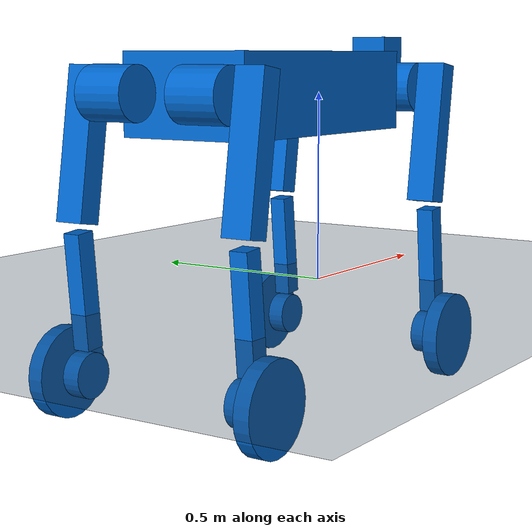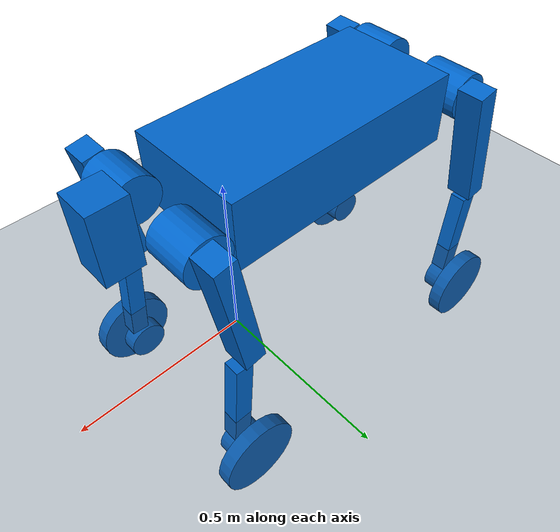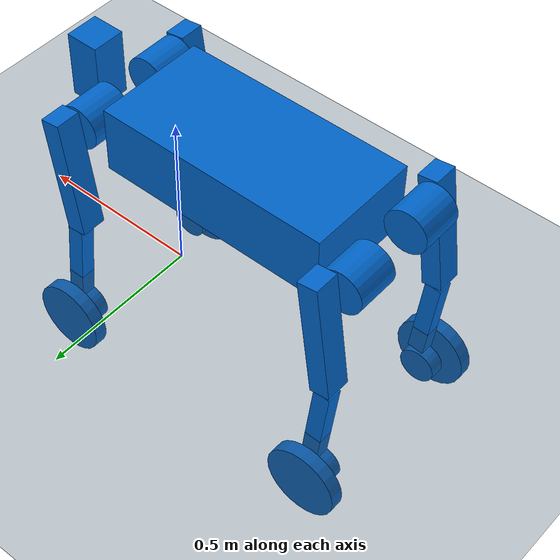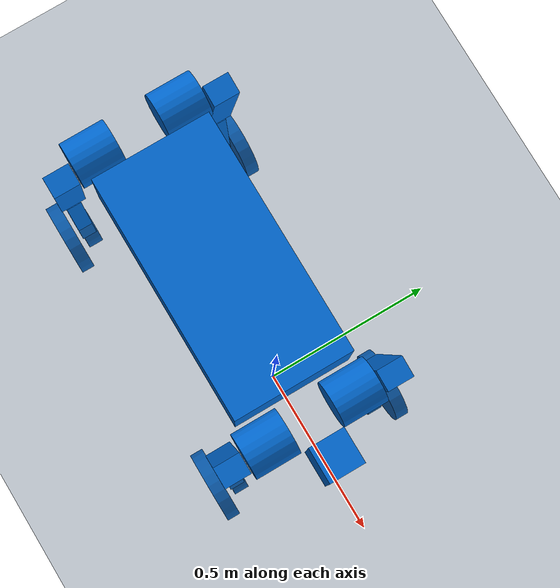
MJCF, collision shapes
<mujoco model="nezha gated-modal sim-to-sim">
  <include file="nezha.xml"/>

  <option timestep="0.005" gravity="0 0 -9.81"/>

  <visual>
    <headlight diffuse="0.6 0.6 0.6" ambient="0.3 0.3 0.3" specular="0 0 0"/>
    <global azimuth="-130" elevation="-20"/>
  </visual>

  <asset>
    <texture type="skybox" builtin="gradient" rgb1="0.3 0.5 0.7" rgb2="0 0 0"
             width="512" height="3072"/>
    <texture type="2d" name="groundplane" builtin="checker" mark="edge"
             rgb1="0.2 0.3 0.4" rgb2="0.1 0.2 0.3" markrgb="0.8 0.8 0.8"
             width="300" height="300"/>
    <material name="groundplane" texture="groundplane" texuniform="true"
              texrepeat="5 5" reflectance="0.2"/>
  </asset>

  <worldbody>
    <light pos="0 0 1.5" dir="0 0 -1" directional="true"/>
    <geom name="floor" type="plane" size="0 0 0.05" material="groundplane"
          contype="2" conaffinity="1" friction="1.0 0.01 0.001"/>
  </worldbody>
</mujoco>

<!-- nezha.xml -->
<mujoco model="nezha">
    <default>
        <default class="robot">
            <default class="motor">
                <joint />
                <motor />
            </default>
            <default class="visual">
                <geom material="default_material" contype="0" conaffinity="0" group="2" />
            </default>
            <default class="collision">
                <!-- Robot collides with terrain (type 2), but not with itself,
                     matching Isaac Gym asset.self_collisions=1. -->
                <geom material="collision_material" condim="3" contype="1" conaffinity="2" solref="0.005 1" friction="0.6 0.01 0.001" density="0" group="3" />
            </default>
        </default>
    </default>
    <compiler angle="radian" meshdir="../../resources/robots/urdf2.1/meshes/" autolimits="true" />
    <size njmax="500" nconmax="100" />
    <asset>
        <material name="default_material" rgba="0.7 0.7 0.7 1" />
        <material name="collision_material" rgba="0.0 0.4 0.8 0.2" />
        <!-- The source trunk.STL has 1.19M faces, above MuJoCo's 200k STL
             limit. This 3 mm visual-only copy preserves its dimensions. -->
        <mesh name="trunk" file="../../../../mujoco/models/assets/trunk_visual.stl" />
        <mesh name="FL_hip" file="FL_hip.STL" />
        <mesh name="FL_thigh" file="FL_thigh.STL" />
        <mesh name="FL_calf" file="FL_calf.STL" />
        <mesh name="FL_footmotor" file="FL_footmotor.STL" />
        <mesh name="FL_foot" file="FL_foot.STL" />
        <mesh name="FR_hip" file="FR_hip.STL" />
        <mesh name="FR_thigh" file="FR_thigh.STL" />
        <mesh name="FR_calf" file="FR_calf.STL" />
        <mesh name="FR_footmotor" file="FR_footmotor.STL" />
        <mesh name="FR_foot" file="FR_foot.STL" />
        <mesh name="RL_hip" file="RL_hip.STL" />
        <mesh name="RL_thigh" file="RL_thigh.STL" />
        <mesh name="RL_calf" file="RL_calf.STL" />
        <mesh name="RL_footmotor" file="RL_footmotor.STL" />
        <mesh name="RL_foot" file="RL_foot.STL" />
        <mesh name="RR_hip" file="RR_hip.STL" />
        <mesh name="RR_thigh" file="RR_thigh.STL" />
        <mesh name="RR_calf" file="RR_calf.STL" />
        <mesh name="RR_footmotor" file="RR_footmotor.STL" />
        <mesh name="RR_foot" file="RR_foot.STL" />
        <mesh name="Lidar" file="Lidar.STL" />
    </asset>
    <worldbody>
        <body name="trunk" childclass="robot" pos="-0.25 0 0.5" quat="1 0 0 0">
            <freejoint name="floating_base" />
            <inertial pos="-0.0007110478286 0.01120736245 -0.004819321797" mass="44.027" fullinertia="0.47177966 1.99866713 2.26564344 0.00168376 9.484e-05 -0.00529047" />
            <site name="imu_site" pos="0 0 0" size="0.005" rgba="1 0 0 1" />
            <site name="base_site" pos="0 0 0" quat="1 0 0 0" />
            <geom type="mesh" mesh="trunk" class="visual" />
            <geom pos="-0.005 -0.01 0.008" type="box" size="0.35 0.17 0.1" class="collision" />
            <body name="FL_hip" pos="0.42614 0.064917 0.013531">
                <inertial pos="-0.006732114424 0.003964663548 -0.0005092345573" mass="2.37707148" fullinertia="0.00493506 0.00665069 0.00555123 0.00013317 -6.604e-05 -2.512e-05" />
                <joint name="FL_hip_joint" axis="1 0 0" range="-0.6 0.6" actuatorfrcrange="-150 150" frictionloss="0.025" />
                <geom type="mesh" mesh="FL_hip" class="visual" />
                <geom pos="0 0.05 0" quat="0.7071068967 0.7071066656 0 0" type="cylinder" size="0.065 0.064" class="collision" />
                <body name="FL_thigh" pos="0 0.1325 0">
                    <inertial pos="-0.003641520897 -0.002809561571 -0.07561639798" mass="4.32911658" fullinertia="0.06040923 0.05814934 0.01093858 -0.00038619 0.00183648 -0.00797877" />
                    <joint name="FL_thigh_joint" axis="0 1 0" range="-0.3 2.6" actuatorfrcrange="-150 150" frictionloss="0.05" />
                    <geom type="mesh" mesh="FL_thigh" class="visual" />
                    <geom pos="-0.01 0.0237 -0.12" euler="0 0.15 0" type="box" size="0.03 0.0375 0.182" class="collision" />
                    <body name="FL_calf" pos="0 0.0245 -0.33">
                        <inertial pos="0.005708204674 0.0005215792343 -0.1404605451" mass="0.65961881" fullinertia="0.01181022 0.01204022 0.00043588 1.9e-06 -0.00035435 -3.335e-05" />
                        <joint name="FL_calf_joint" axis="0 1 0" range="-2.5 -0.7" actuatorfrcrange="-225 225" frictionloss="0.05" />
                        <geom type="mesh" mesh="FL_calf" class="visual" />
                        <geom pos="0 0 -0.13" euler="0 -0.1 0" type="box" size="0.025 0.0225 0.14" class="collision" />
                        <body name="FL_footmotor" pos="5.7407e-05 0.0205 -0.33">
                            <inertial pos="0.0006356721871 -0.002191524088 0.002338656359" mass="1" fullinertia="0.00116858 0.00119167 0.0010827 -2.71e-05 2.589e-05 -0.00010115" />
                            <geom type="mesh" mesh="FL_footmotor" class="visual" />
                            <geom pos="0 -0.025 0" quat="0.7071067812 0.7071067812 0 0" type="cylinder" size="0.055 0.0225" class="collision" />
                            <body name="FL_foot" pos="0.00010365 0.034479 0.00033954">
                                <inertial pos="-6.976440147e-06 -0.007794902633 -1.607328158e-05" mass="0.8" fullinertia="0.00412785 0.00787206 0.00412853 0 -3.6e-07 0" />
                                <joint name="FL_foot_joint" axis="0 1 0" range="-9999 9999" actuatorfrcrange="-56 56" frictionloss="0.05" />
                                <geom type="mesh" mesh="FL_foot" class="visual" />
                                <geom quat="0.7071067812 0.7071067812 0 0" type="cylinder" size="0.11 0.02" class="collision" />
                            </body>
                        </body>
                    </body>
                </body>
            </body>
            <body name="FR_hip" pos="0.42614 -0.089083 0.013531">
                <inertial pos="-0.006732114424 -0.003964663548 0.0005092345573" mass="2.37707148" fullinertia="0.00493506 0.00665069 0.00555123 -0.00013317 6.604e-05 -2.512e-05" />
                <joint name="FR_hip_joint" axis="1 0 0" range="-0.6 0.6" actuatorfrcrange="-150 150" frictionloss="0.025" />
                <geom type="mesh" mesh="FR_hip" class="visual" />
                <geom pos="0 -0.05 0" quat="0.7071068967 0.7071066656 0 0" type="cylinder" size="0.065 0.064" class="collision" />
                <body name="FR_thigh" pos="0 -0.1325 0">
                    <inertial pos="-0.003642335268 0.002789042941 -0.0756084967" mass="4.32961796" fullinertia="0.06035734 0.05814947 0.01099953 0.00038606 0.00191307 0.0079775" />
                    <joint name="FR_thigh_joint" axis="0 1 0" range="-0.3 2.6" actuatorfrcrange="-150 150" frictionloss="0.05" />
                    <geom type="mesh" mesh="FR_thigh" class="visual" />
                    <geom pos="-0.01 -0.0237 -0.12" euler="0 0.15 0" type="box" size="0.03 0.0375 0.182" class="collision" />
                    <body name="FR_calf" pos="0 -0.0245 -0.33">
                        <inertial pos="0.005708374228 -0.0005215676363 -0.1404611372" mass="0.65961882" fullinertia="0.01181021 0.01204022 0.00043588 -1.9e-06 -0.00035435 3.335e-05" />
                        <joint name="FR_calf_joint" axis="0 1 0" range="-2.5 -0.7" actuatorfrcrange="-225 225" frictionloss="0.05" />
                        <geom type="mesh" mesh="FR_calf" class="visual" />
                        <geom pos="0 0 -0.13" euler="0 -0.1 0" type="box" size="0.025 0.0225 0.14" class="collision" />
                        <body name="FR_footmotor" pos="5.7407e-05 -0.0205 -0.33">
                            <inertial pos="0.000618123015 0.002191526012 0.002343364402" mass="1" fullinertia="0.00116955 0.00119167 0.00108173 2.707e-05 2.421e-05 0.00010116" />
                            <geom type="mesh" mesh="FR_footmotor" class="visual" />
                            <geom pos="0 0.025 0" quat="0.7071067812 0.7071067812 0 0" type="cylinder" size="0.055 0.0225" class="collision" />
                            <body name="FR_foot" pos="7.9882e-05 -0.034479 0.0003459">
                                <inertial pos="-2.275997799e-06 0.007794902633 -1.737357004e-05" mass="0.8" fullinertia="0.00412771 0.00787206 0.00412867 0 -1.3e-07 0" />
                                <joint name="FR_foot_joint" axis="0 1 0" range="-9999 9999" actuatorfrcrange="-56 56" frictionloss="0.05" />
                                <geom type="mesh" mesh="FR_foot" class="visual" />
                                <geom quat="0.7071067812 0.7071067812 0 0" type="cylinder" size="0.11 0.02" class="collision" />
                            </body>
                        </body>
                    </body>
                </body>
            </body>
            <body name="RL_hip" pos="-0.43586 0.064917 0.013531">
                <inertial pos="0.006732114424 0.003964663548 0.0005092345573" mass="2.37707148" fullinertia="0.00493506 0.00665069 0.00555123 -0.00013317 -6.604e-05 2.512e-05" />
                <joint name="RL_hip_joint" axis="1 0 0" range="-0.6 0.6" actuatorfrcrange="-150 150" frictionloss="0.025" />
                <geom type="mesh" mesh="RL_hip" class="visual" />
                <geom pos="0 0.05 0" quat="0.7071068967 0.7071066656 0 0" type="cylinder" size="0.065 0.064" class="collision" />
                <body name="RL_thigh" pos="0 0.1325 0">
                    <inertial pos="-0.003641516386 -0.002809561534 -0.07561638233" mass="4.32911658" fullinertia="0.06040923 0.05814934 0.01093858 -0.00038619 0.00183648 -0.00797877" />
                    <joint name="RL_thigh_joint" axis="0 1 0" range="-0.3 2.6" actuatorfrcrange="-150 150" frictionloss="0.05" />
                    <geom type="mesh" mesh="RL_thigh" class="visual" />
                    <geom pos="0.01 0.0237 -0.12" euler="0 0.15 0" type="box" size="0.03 0.0375 0.182" class="collision" />
                    <body name="RL_calf" pos="0 0.0245 -0.33">
                        <inertial pos="0.005708204674 0.0005215792343 -0.1404605451" mass="0.65961881" fullinertia="0.01181022 0.01204022 0.00043588 1.9e-06 -0.00035435 -3.335e-05" />
                        <joint name="RL_calf_joint" axis="0 1 0" range="-2.5 -0.7" actuatorfrcrange="-225 225" frictionloss="0.05" />
                        <geom type="mesh" mesh="RL_calf" class="visual" />
                        <geom pos="0 0 -0.13" euler="0 -0.1 0" type="box" size="0.025 0.0225 0.14" class="collision" />
                        <body name="RL_footmotor" pos="5.7407e-05 0.0205 -0.33">
                            <inertial pos="0.0006356721861 -0.002191524068 0.002338656346" mass="1" fullinertia="0.00116858 0.00119167 0.0010827 -2.71e-05 2.589e-05 -0.00010115" />
                            <geom type="mesh" mesh="RL_footmotor" class="visual" />
                            <geom pos="0 -0.025 0" quat="0.7071067812 0.7071067812 0 0" type="cylinder" size="0.055 0.0225" class="collision" />
                            <body name="RL_foot" pos="0.00010365 0.034479 0.00033954">
                                <inertial pos="-4.68157255e-06 -0.007794902633 1.688502237e-05" mass="0.8" fullinertia="0.00412777 0.00787206 0.00412861 0 2.5e-07 0" />
                                <joint name="RL_foot_joint" axis="0 1 0" range="-9999 9999" actuatorfrcrange="-56 56" frictionloss="0.05" />
                                <geom type="mesh" mesh="RL_foot" class="visual" />
                                <geom quat="0.7071067812 0.7071067812 0 0" type="cylinder" size="0.11 0.02" class="collision" />
                            </body>
                        </body>
                    </body>
                </body>
            </body>
            <body name="RR_hip" pos="-0.43586 -0.089083 0.013531">
                <inertial pos="0.006732114424 -0.003964663548 -0.0005092345573" mass="2.37707148" fullinertia="0.00493506 0.00665069 0.00555123 0.00013317 6.604e-05 2.512e-05" />
                <joint name="RR_hip_joint" axis="1 0 0" range="-0.6 0.6" actuatorfrcrange="-150 150" frictionloss="0.025" />
                <geom type="mesh" mesh="RR_hip" class="visual" />
                <geom pos="0 -0.05 0" quat="0.7071068967 0.7071066656 0 0" type="cylinder" size="0.065 0.064" class="collision" />
                <body name="RR_thigh" pos="0 -0.1325 0">
                    <inertial pos="-0.003642335603 0.002789042933 -0.07560848071" mass="4.32961796" fullinertia="0.06035734 0.05814947 0.01099953 0.00038606 0.00191307 0.0079775" />
                    <joint name="RR_thigh_joint" axis="0 1 0" range="-0.3 2.6" actuatorfrcrange="-150 150" frictionloss="0.05" />
                    <geom type="mesh" mesh="RR_thigh" class="visual" />
                    <geom pos="0.01 -0.0237 -0.12" euler="0 0.15 0" type="box" size="0.03 0.0375 0.182" class="collision" />
                    <body name="RR_calf" pos="0 -0.0245 -0.33">
                        <inertial pos="0.005708374188 -0.0005215676609 -0.1404611371" mass="0.65961882" fullinertia="0.01181021 0.01204022 0.00043588 -1.9e-06 -0.00035435 3.335e-05" />
                        <joint name="RR_calf_joint" axis="0 1 0" range="-2.5 -0.7" actuatorfrcrange="-225 225" frictionloss="0.05" />
                        <geom type="mesh" mesh="RR_calf" class="visual" />
                        <geom pos="0 0 -0.13" euler="0 -0.1 0" type="box" size="0.025 0.0225 0.14" class="collision" />
                        <body name="RR_footmotor" pos="5.7407e-05 -0.0205 -0.33">
                            <inertial pos="0.0006181230154 0.002191526012 0.002343364402" mass="1" fullinertia="0.00116955 0.00119167 0.00108173 2.707e-05 2.421e-05 0.00010116" />
                            <geom type="mesh" mesh="RR_footmotor" class="visual" />
                            <geom pos="0 0.025 0" quat="0.7071067812 0.7071067812 0 0" type="cylinder" size="0.055 0.0225" class="collision" />
                            <body name="RR_foot" pos="7.9882e-05 -0.034479 0.0003459">
                                <inertial pos="2.155072239e-06 0.007794902633 1.738898403e-05" mass="0.8" fullinertia="0.00412771 0.00787206 0.00412867 0 -1.2e-07 0" />
                                <joint name="RR_foot_joint" axis="0 1 0" range="-9999 9999" actuatorfrcrange="-56 56" frictionloss="0.05" />
                                <geom type="mesh" mesh="RR_foot" class="visual" />
                                <geom quat="0.7071067812 0.7071067812 0 0" type="cylinder" size="0.11 0.02" class="collision" />
                            </body>
                        </body>
                    </body>
                </body>
            </body>
            <body name="Lidar" pos="0.56234 -0.012083 -0.027985">
                <inertial pos="-0.06171513918 -0.0004094723708 0.07902487646" mass="0.81416515" fullinertia="0.00426251 0.00700838 0.00373433 3.01e-06 -0.00034262 -2.026e-05" />
                <geom type="mesh" mesh="Lidar" class="visual" />
                <geom pos="-0.02 0 0.076" type="box" size="0.05 0.05 0.1" class="collision" />
            </body>
        </body>
    </worldbody>
    <actuator>
        <motor name="FL_hip_joint" joint="FL_hip_joint" ctrllimited="true" ctrlrange="-150 150" gear="1" />
        <motor name="FL_thigh_joint" joint="FL_thigh_joint" ctrllimited="true" ctrlrange="-150 150" gear="1" />
        <motor name="FL_calf_joint" joint="FL_calf_joint" ctrllimited="true" ctrlrange="-225 225" gear="1" />
        <motor name="FL_foot_joint" joint="FL_foot_joint" ctrllimited="true" ctrlrange="-56 56" gear="1" />
        <motor name="FR_hip_joint" joint="FR_hip_joint" ctrllimited="true" ctrlrange="-150 150" gear="1" />
        <motor name="FR_thigh_joint" joint="FR_thigh_joint" ctrllimited="true" ctrlrange="-150 150" gear="1" />
        <motor name="FR_calf_joint" joint="FR_calf_joint" ctrllimited="true" ctrlrange="-225 225" gear="1" />
        <motor name="FR_foot_joint" joint="FR_foot_joint" ctrllimited="true" ctrlrange="-56 56" gear="1" />
        <motor name="RL_hip_joint" joint="RL_hip_joint" ctrllimited="true" ctrlrange="-150 150" gear="1" />
        <motor name="RL_thigh_joint" joint="RL_thigh_joint" ctrllimited="true" ctrlrange="-150 150" gear="1" />
        <motor name="RL_calf_joint" joint="RL_calf_joint" ctrllimited="true" ctrlrange="-225 225" gear="1" />
        <motor name="RL_foot_joint" joint="RL_foot_joint" ctrllimited="true" ctrlrange="-56 56" gear="1" />
        <motor name="RR_hip_joint" joint="RR_hip_joint" ctrllimited="true" ctrlrange="-150 150" gear="1" />
        <motor name="RR_thigh_joint" joint="RR_thigh_joint" ctrllimited="true" ctrlrange="-150 150" gear="1" />
        <motor name="RR_calf_joint" joint="RR_calf_joint" ctrllimited="true" ctrlrange="-225 225" gear="1" />
        <motor name="RR_foot_joint" joint="RR_foot_joint" ctrllimited="true" ctrlrange="-56 56" gear="1" />
    </actuator>
    <contact>
        <exclude body1="trunk" body2="FL_hip" />
        <exclude body1="FL_hip" body2="FL_thigh" />
        <exclude body1="FL_thigh" body2="FL_calf" />
        <exclude body1="FL_calf" body2="FL_footmotor" />
        <exclude body1="FL_footmotor" body2="FL_foot" />
        <exclude body1="trunk" body2="FR_hip" />
        <exclude body1="FR_hip" body2="FR_thigh" />
        <exclude body1="FR_thigh" body2="FR_calf" />
        <exclude body1="FR_calf" body2="FR_footmotor" />
        <exclude body1="FR_footmotor" body2="FR_foot" />
        <exclude body1="trunk" body2="RL_hip" />
        <exclude body1="RL_hip" body2="RL_thigh" />
        <exclude body1="RL_thigh" body2="RL_calf" />
        <exclude body1="RL_calf" body2="RL_footmotor" />
        <exclude body1="RL_footmotor" body2="RL_foot" />
        <exclude body1="trunk" body2="RR_hip" />
        <exclude body1="RR_hip" body2="RR_thigh" />
        <exclude body1="RR_thigh" body2="RR_calf" />
        <exclude body1="RR_calf" body2="RR_footmotor" />
        <exclude body1="RR_footmotor" body2="RR_foot" />
        <exclude body1="trunk" body2="Lidar" />
    </contact>
    <sensor>
        <framequat name="base_quat" objtype="site" objname="base_site" />
        <accelerometer name="base_accelerometer" site="imu_site" />
        <gyro name="base_gyro" site="imu_site" />
    </sensor>
</mujoco>
